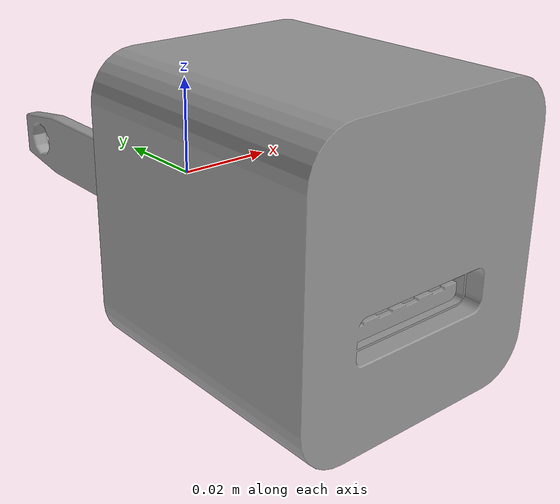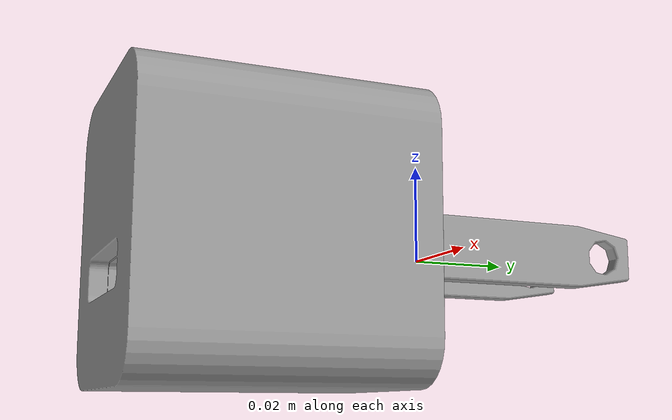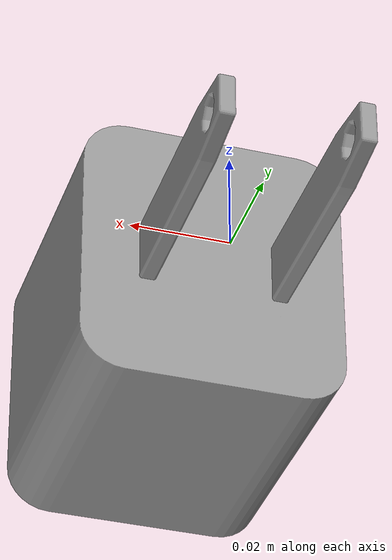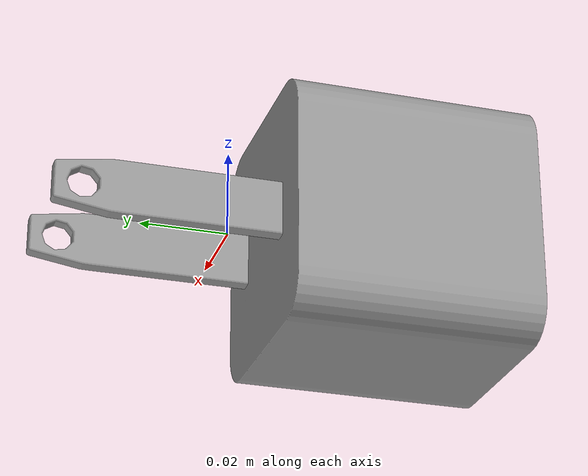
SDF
<?xml version='1.0'?>
<sdf version='1.7'>
  <model name='pegv3'>
    <link name='peg_body'>
      <inertial>
        <!-- Volume:  1.6465004000e-04 -->
        <mass> 0.15 </mass>
        <!-- Center of mass:  2.0072000000e-03  3.9529900000e-03  3.5368300000e-03 -->
        <pose>  2.0072000000e-03  3.9529900000e-03  3.5368300000e-03 0 0 0 </pose>
        <!-- Inertia matrix -->
        <inertia>
          <ixx>  7.8496761616e-05 </ixx>
          <ixy>  4.8048272566e-09 </ixy>
          <ixz> -4.8908825045e-08 </ixz>
          <iyy>  7.3119383998e-05 </iyy>
          <iyz> -3.3659399658e-07 </iyz>
          <izz>  7.4426711072e-05 </izz>
        </inertia>
      </inertial>
      <pose>-0.001223 -0.032458 -0.002081 0 -0 0</pose>
      <gravity>1</gravity>
      <self_collide>0</self_collide>
      <kinematic>0</kinematic>
      <enable_wind>0</enable_wind>
      <visual name='visual'>
        <pose>0 0 0 0 -0 0</pose>
        <geometry>
          <mesh>
            <uri>/catkin_workspace/src/ros_kortex/kortex_examples/src/move_it/object/new_peg.stl_sdf/peg_body_import.dae</uri>
            <scale>1 1 1</scale>
          </mesh>
        </geometry>
        <material>
          <lighting>1</lighting>
          <script>
            <uri>file://media/materials/scripts/gazebo.material</uri>
            <name>Gazebo/Grey</name>
          </script>
          <shader type='pixel'>
            <normal_map>__default__</normal_map>
          </shader>
          <emissive>0 0 0 1</emissive>
        </material>
        <transparency>0</transparency>
        <cast_shadows>1</cast_shadows>
      </visual>
      <collision name='collision'>
        <laser_retro>0</laser_retro>
        <max_contacts>10</max_contacts>
        <pose>0 0 0 0 -0 0</pose>
        <geometry>
          <mesh>
            <uri>/catkin_workspace/src/ros_kortex/kortex_examples/src/move_it/object/new_peg.stl_sdf/peg_body_import.dae</uri>
            <scale>1 1 1</scale>
          </mesh>
        </geometry>
        <surface>
          <friction>
            <ode>
              <mu>1</mu>
              <mu2>1</mu2>
              <fdir1>0 0 0</fdir1>
              <slip1>0</slip1>
              <slip2>0</slip2>
            </ode>
            <torsional>
              <coefficient>1</coefficient>
              <patch_radius>0</patch_radius>
              <surface_radius>0</surface_radius>
              <use_patch_radius>1</use_patch_radius>
              <ode>
                <slip>0</slip>
              </ode>
            </torsional>
          </friction>
          <bounce>
            <restitution_coefficient>0</restitution_coefficient>
            <threshold>1e+06</threshold>
          </bounce>
          <contact>
            <collide_without_contact>0</collide_without_contact>
            <collide_without_contact_bitmask>1</collide_without_contact_bitmask>
            <collide_bitmask>1</collide_bitmask>
            <ode>
              <soft_cfm>0</soft_cfm>
              <soft_erp>0.2</soft_erp>
              <kp>1e+13</kp>
              <kd>1</kd>
              <max_vel>0.01</max_vel>
              <min_depth>0</min_depth>
            </ode>
            <bullet>
              <split_impulse>1</split_impulse>
              <split_impulse_penetration_threshold>-0.01</split_impulse_penetration_threshold>
              <soft_cfm>0</soft_cfm>
              <soft_erp>0.2</soft_erp>
              <kp>1e+13</kp>
              <kd>1</kd>
            </bullet>
          </contact>
        </surface>
      </collision>
    </link>
    <link name='peg_leg_1'>
      <inertial>
        <!-- Volume:  1.9756670000e-06 -->
        <mass> 0.005 </mass>
        <!-- Center of mass: -2.2160000000e-05 -2.0349000000e-04  1.9836200000e-03 -->
        <pose> -2.2160000000e-05 -2.0349000000e-04  1.9836200000e-03 0 0 0 </pose>
        <!-- Inertia matrix -->
        <inertia>
          <ixx>  1.0370609015e-06 </ixx>
          <ixy> -1.7715536070e-12 </ixy>
          <ixz>  4.5048077434e-11 </ixz>
          <iyy>  9.7484950652e-07 </iyy>
          <iyz>  4.5554235608e-12 </iyz>
          <izz>  7.1413350529e-08 </izz>
        </inertia>
      </inertial>
      <pose>-0.012833 0.01602 0.001158 0 -0 0</pose>
      <gravity>1</gravity>
      <self_collide>0</self_collide>
      <kinematic>0</kinematic>
      <enable_wind>0</enable_wind>
      <visual name='visual'>
        <pose>0 0 0 0 -0 0</pose>
        <geometry>
          <mesh>
            <uri>/catkin_workspace/src/ros_kortex/kortex_examples/src/move_it/object/new_peg.stl_sdf/peg_leg_import.dae</uri>
            <scale>1 1 1</scale>
          </mesh>
        </geometry>
        <material>
          <lighting>1</lighting>
          <script>
            <uri>file://media/materials/scripts/gazebo.material</uri>
            <name>Gazebo/Grey</name>
          </script>
          <shader type='pixel'>
            <normal_map>__default__</normal_map>
          </shader>
          <emissive>0 0 0 1</emissive>
        </material>
        <transparency>0</transparency>
        <cast_shadows>1</cast_shadows>
      </visual>
      <collision name='collision'>
        <laser_retro>0</laser_retro>
        <max_contacts>10</max_contacts>
        <pose>0 0 0 0 -0 0</pose>
        <geometry>
          <mesh>
            <uri>/catkin_workspace/src/ros_kortex/kortex_examples/src/move_it/object/new_peg.stl_sdf/peg_leg_import.dae</uri>
            <scale>1 1 1</scale>
          </mesh>
        </geometry>
        <surface>
          <friction>
            <ode>
              <mu>1</mu>
              <mu2>1</mu2>
              <fdir1>0 0 0</fdir1>
              <slip1>0</slip1>
              <slip2>0</slip2>
            </ode>
            <torsional>
              <coefficient>1</coefficient>
              <patch_radius>0</patch_radius>
              <surface_radius>0</surface_radius>
              <use_patch_radius>1</use_patch_radius>
              <ode>
                <slip>0</slip>
              </ode>
            </torsional>
          </friction>
          <bounce>
            <restitution_coefficient>0</restitution_coefficient>
            <threshold>1e+06</threshold>
          </bounce>
          <contact>
            <collide_without_contact>0</collide_without_contact>
            <collide_without_contact_bitmask>1</collide_without_contact_bitmask>
            <collide_bitmask>1</collide_bitmask>
            <ode>
              <soft_cfm>0</soft_cfm>
              <soft_erp>0.2</soft_erp>
              <kp>1e+13</kp>
              <kd>1</kd>
              <max_vel>0.01</max_vel>
              <min_depth>0</min_depth>
            </ode>
            <bullet>
              <split_impulse>1</split_impulse>
              <split_impulse_penetration_threshold>-0.01</split_impulse_penetration_threshold>
              <soft_cfm>0</soft_cfm>
              <soft_erp>0.2</soft_erp>
              <kp>1e+13</kp>
              <kd>1</kd>
            </bullet>
          </contact>
        </surface>
      </collision>
    </link>
    <link name='peg_leg_2'>
      <inertial>
        <!-- Volume:  1.9756670000e-06 -->
        <mass> 0.005 </mass>
        <!-- Center of mass: -2.2160000000e-05 -2.0349000000e-04  1.9836200000e-03 -->
        <pose> -2.2160000000e-05 -2.0349000000e-04  1.9836200000e-03 0 0 0 </pose>
        <!-- Inertia matrix -->
        <inertia>
          <ixx>  1.0370609015e-06 </ixx>
          <ixy> -1.7715536070e-12 </ixy>
          <ixz>  4.5048077434e-11 </ixz>
          <iyy>  9.7484950652e-07 </iyy>
          <iyz>  4.5554235608e-12 </iyz>
          <izz>  7.1413350529e-08 </izz>
        </inertia>
      </inertial>
      <pose>0.014056 0.016438 0.000923 0 -0 0</pose>
      <visual name='visual'>
        <pose>0 0 0 0 -0 0</pose>
        <geometry>
          <mesh>
            <uri>/catkin_workspace/src/ros_kortex/kortex_examples/src/move_it/object/new_peg.stl_sdf/peg_leg_import.dae</uri>
            <scale>1 1 1</scale>
          </mesh>
        </geometry>
        <material>
          <lighting>1</lighting>
          <script>
            <uri>file://media/materials/scripts/gazebo.material</uri>
            <name>Gazebo/Grey</name>
          </script>
          <shader type='pixel'/>
          <emissive>0 0 0 1</emissive>
        </material>
        <transparency>0</transparency>
        <cast_shadows>1</cast_shadows>
      </visual>
      <collision name='collision'>
        <laser_retro>0</laser_retro>
        <max_contacts>10</max_contacts>
        <pose>0 0 0 0 -0 0</pose>
        <geometry>
          <mesh>
            <uri>/catkin_workspace/src/ros_kortex/kortex_examples/src/move_it/object/new_peg.stl_sdf/peg_leg_import.dae</uri>
            <scale>1 1 1</scale>
          </mesh>
        </geometry>
        <surface>
          <friction>
            <ode>
              <mu>1</mu>
              <mu2>1</mu2>
              <fdir1>0 0 0</fdir1>
              <slip1>0</slip1>
              <slip2>0</slip2>
            </ode>
            <torsional>
              <coefficient>1</coefficient>
              <patch_radius>0</patch_radius>
              <surface_radius>0</surface_radius>
              <use_patch_radius>1</use_patch_radius>
              <ode>
                <slip>0</slip>
              </ode>
            </torsional>
          </friction>
          <bounce>
            <restitution_coefficient>0</restitution_coefficient>
            <threshold>1e+06</threshold>
          </bounce>
          <contact>
            <collide_without_contact>0</collide_without_contact>
            <collide_without_contact_bitmask>1</collide_without_contact_bitmask>
            <collide_bitmask>1</collide_bitmask>
            <ode>
              <soft_cfm>0</soft_cfm>
              <soft_erp>0.2</soft_erp>
              <kp>1e+13</kp>
              <kd>1</kd>
              <max_vel>0.01</max_vel>
              <min_depth>0</min_depth>
            </ode>
            <bullet>
              <split_impulse>1</split_impulse>
              <split_impulse_penetration_threshold>-0.01</split_impulse_penetration_threshold>
              <soft_cfm>0</soft_cfm>
              <soft_erp>0.2</soft_erp>
              <kp>1e+13</kp>
              <kd>1</kd>
            </bullet>
          </contact>
        </surface>
      </collision>
    </link>
    <joint name='peg_body_JOINT_1' type='fixed'>
      <parent>peg_body</parent>
      <child>peg_leg_1</child>
      <pose>0 0 0 0 -0 0</pose>
      <physics>
        <ode>
          <limit>
            <cfm>0</cfm>
            <erp>0.2</erp>
          </limit>
          <suspension>
            <cfm>0</cfm>
            <erp>0.2</erp>
          </suspension>
        </ode>
      </physics>
    </joint>
    <joint name='peg_body_JOINT_2' type='fixed'>
      <parent>peg_body</parent>
      <child>peg_leg_2</child>
      <pose>0 0 0 0 -0 0</pose>
      <physics>
        <ode>
          <limit>
            <cfm>0</cfm>
            <erp>0.2</erp>
          </limit>
          <suspension>
            <cfm>0</cfm>
            <erp>0.2</erp>
          </suspension>
        </ode>
      </physics>
    </joint>
    <static>0</static>
    <allow_auto_disable>1</allow_auto_disable>
  </model>
</sdf>
